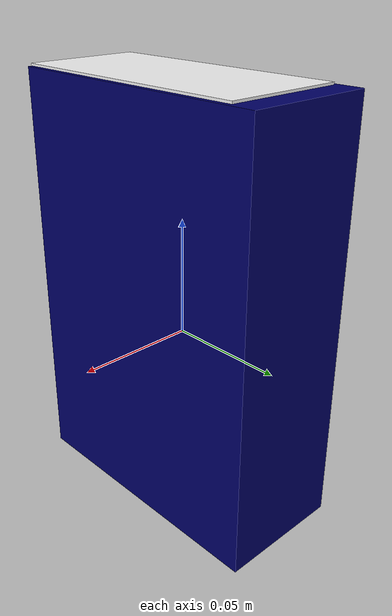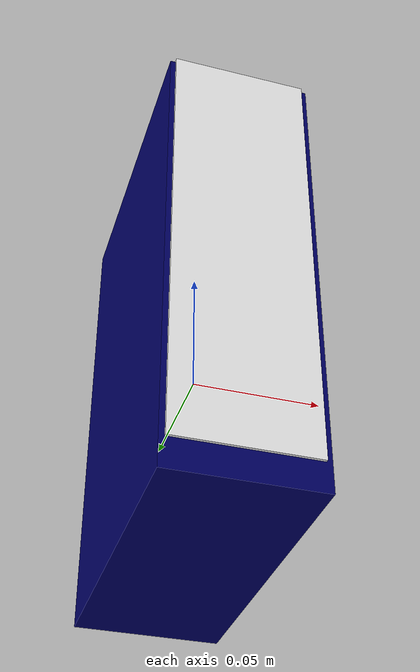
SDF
<?xml version="1.0"?>
<sdf version="1.6">
  <model name="book_13">
    <static>false</static>
    <allow_auto_disable>1</allow_auto_disable>
    <link name="book">
      <pose>0 0 0.015405 0 1.5708 0</pose>

      <inertial>
        <mass>0.15</mass>
        <inertia>
          <ixx>0.000532</ixx>
          <iyy>0.000896</iyy>
          <izz>0.001302</izz>
          <ixy>0.0</ixy>
          <ixz>0.0</ixz>
          <iyz>0.0</iyz>
        </inertia>
      </inertial>

      <self_collide>false</self_collide>
      <kinematic>false</kinematic>
      <gravity>true</gravity>

      <visual name="cover_visual">
        <geometry>
          <box>
            <size>0.18 0.12 0.055</size>
          </box>
        </geometry>
        <material>
          <ambient>0.0 0.0 0.3 1</ambient>
          <diffuse>0.0 0.0 0.4 1</diffuse>
          <specular>0.0 0.0 0.0 1</specular>
          <emissive>0.0 0.0 0.0 1</emissive>
        </material>
        <cast_shadows>true</cast_shadows>
      </visual>

      <collision name="cover_collision">
        <geometry>
          <box>
            <size>0.18 0.12 0.055</size>
          </box>
        </geometry>
      </collision>

      <visual name="page_visual">
        <pose>-0.006 -0.006 0 0 0 0</pose>
        <geometry>
          <box>
            <size>0.17 0.11 0.051</size>
          </box>
        </geometry>
        <material>
          <lighting>true</lighting>
          <ambient>1.0 1.0 1.0 1</ambient>
          <diffuse>0.95 0.95 0.95 1</diffuse>
          <specular>0.0 0.0 0.0 1</specular>
          <emissive>0.0 0.0 0.0 1</emissive>
        </material>
        <cast_shadows>false</cast_shadows>
      </visual>

      <collision name="page_collision">
        <pose>-0.006 -0.006 0 0 0 0</pose>
        <geometry>
          <box>
            <size>0.17 0.11 0.051</size>
          </box>
        </geometry>
      </collision>

    </link>
  </model>
</sdf>
